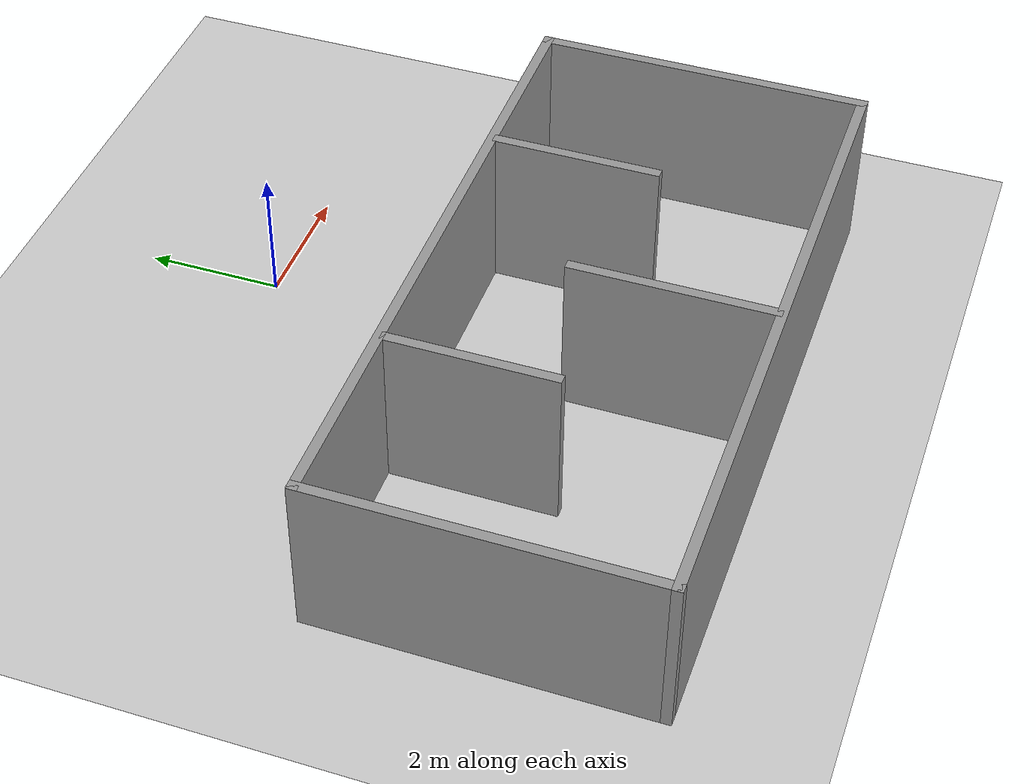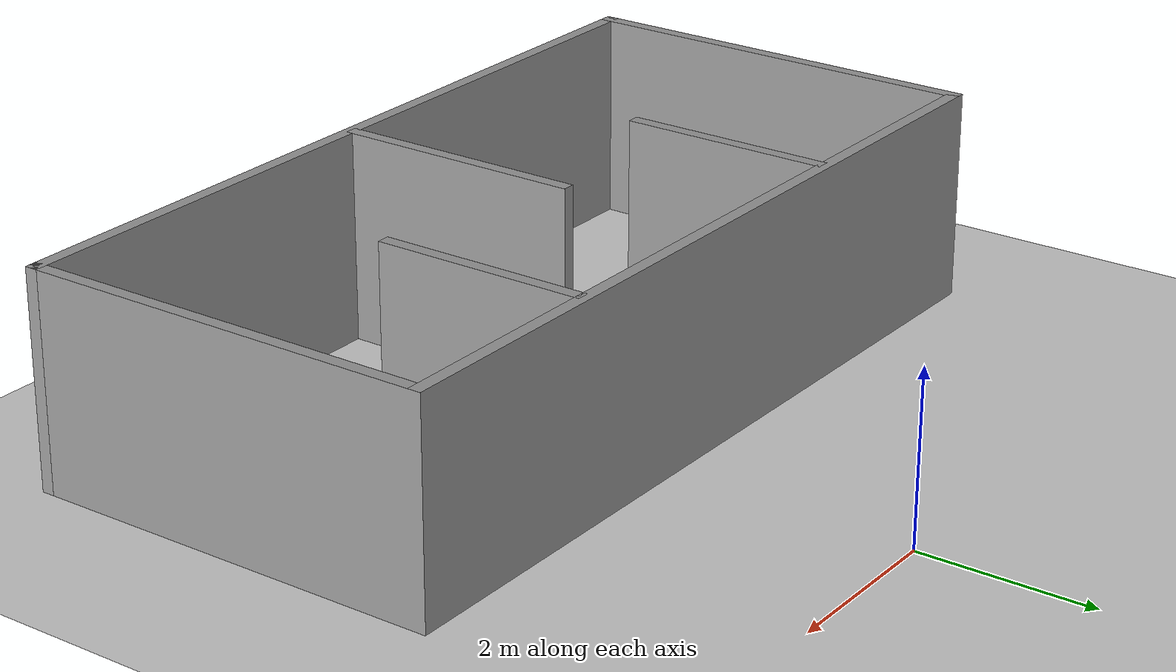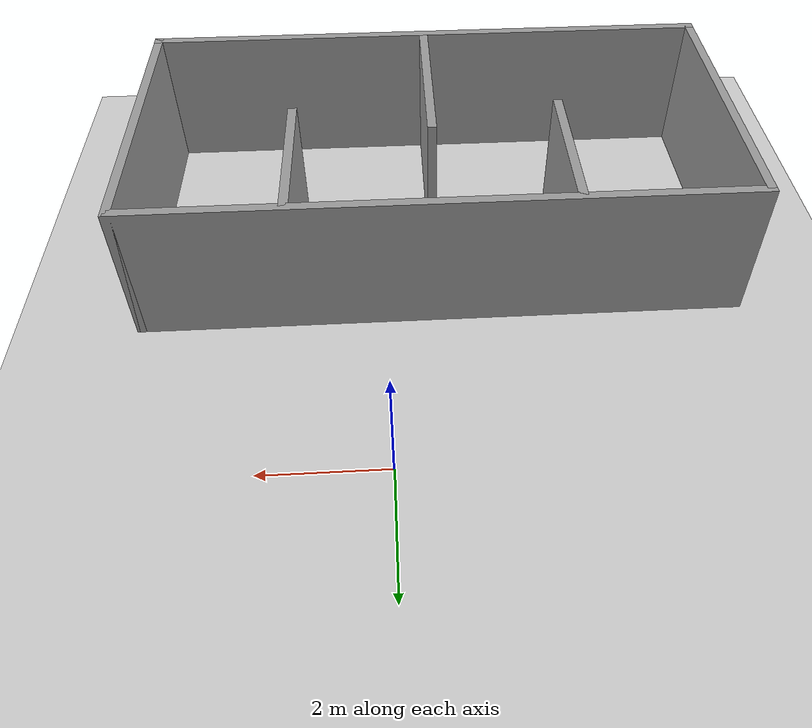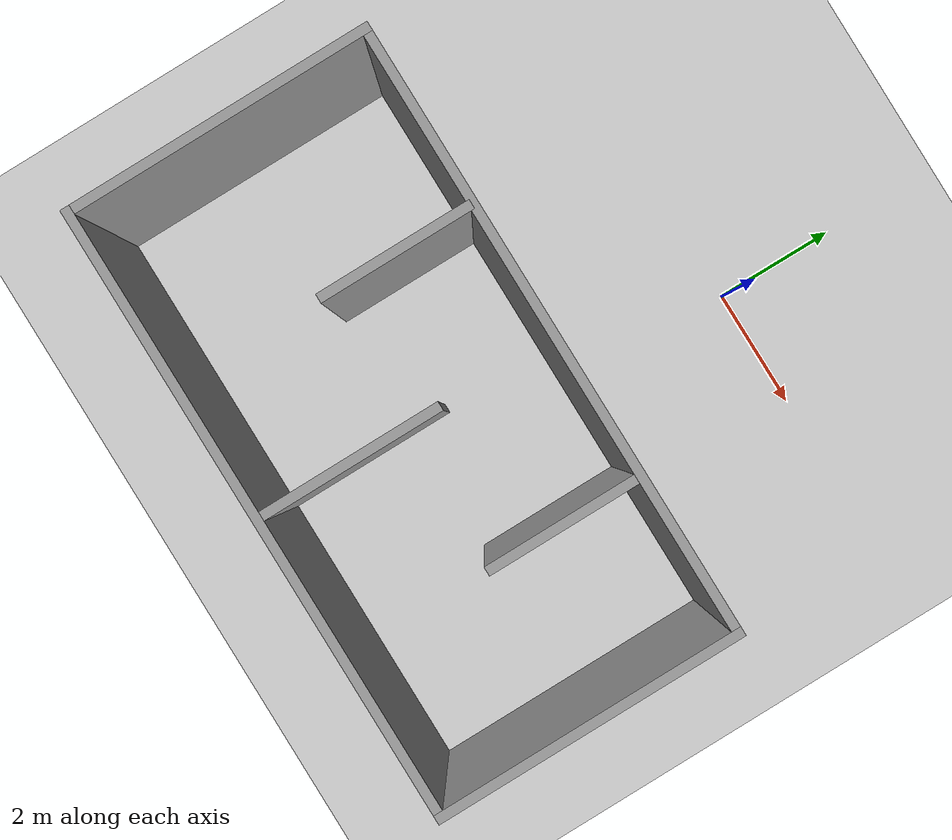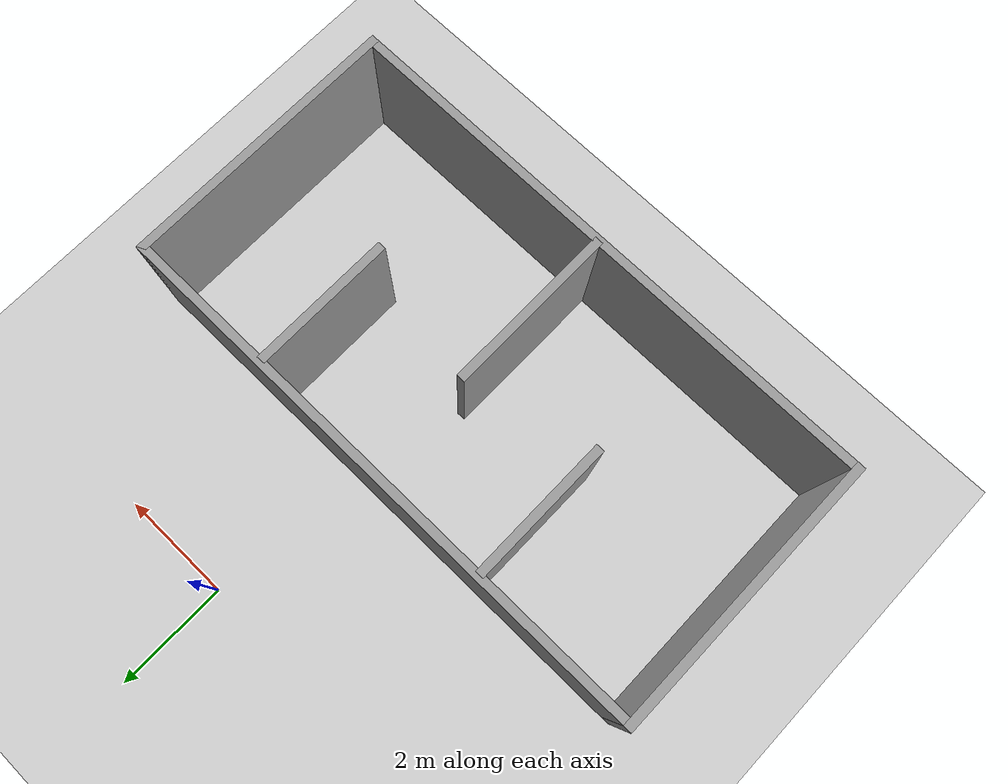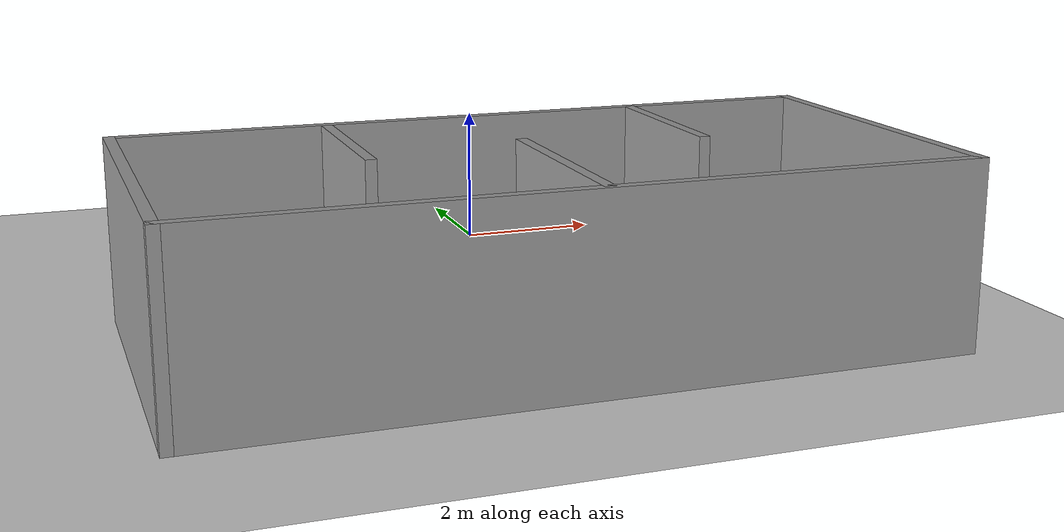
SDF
<sdf version="1.7">
 <world name="default">
  <light name="sun" type="directional">
   <pose>0 0 10 0 -0 0</pose>
   <diffuse>0.8 0.8 0.8 1</diffuse>
   <specular>0.2 0.2 0.2 1</specular>
   <attenuation>
    <range>1000</range>
    <constant>0.9</constant>
    <linear>0.01</linear>
    <quadratic>0.001</quadratic>
   </attenuation>
   <direction>-0.5 0.1 -0.9</direction>
   <spot><inner_angle>0</inner_angle><outer_angle>0</outer_angle><falloff>0</falloff></spot>
  </light>
  <model name="ground_plane">
   <static>1</static>
   <link name="link">
    <collision name="collision">
     <geometry><plane><normal>0 0 1</normal><size>100 100</size></plane></geometry>
     <surface><friction><ode><mu>100</mu><mu2>50</mu2></ode></friction></surface>
    </collision>
    <visual name="visual">
     <cast_shadows>0</cast_shadows>
     <geometry><plane><normal>0 0 1</normal><size>100 100</size></plane></geometry>
     <material>
      <script><uri>file://media/materials/scripts/gazebo.material</uri><name>Gazebo/Grey</name></script>
     </material>
    </visual>
   </link>
  </model>
  <gravity>0 0 -9.8</gravity>
  <magnetic_field>6e-06 2.3e-05 -4.2e-05</magnetic_field>
  <atmosphere type="adiabatic"/>
  <physics type="ode">
   <max_step_size>0.001</max_step_size>
   <real_time_factor>1</real_time_factor>
   <real_time_update_rate>1000</real_time_update_rate>
  </physics>
  <scene><ambient>0.4 0.4 0.4 1</ambient><background>0.7 0.7 0.7 1</background><shadows>1</shadows></scene>
  <spherical_coordinates>
   <surface_model>EARTH_WGS84</surface_model>
   <latitude_deg>0</latitude_deg>
   <longitude_deg>0</longitude_deg>
   <elevation>0</elevation>
   <heading_deg>0</heading_deg>
  </spherical_coordinates>
  <model name="CG-GZ-Scene-001">
   <pose>-0.869822 -5.35071 0 0 -0 0</pose>
   <link name="Wall_20">
    <collision name="Wall_20_Collision">
     <geometry><box><size>5 0.15 2.5</size></box></geometry>
     <pose>0 0 1.25 0 -0 0</pose>
    </collision>
    <visual name="Wall_20_Visual">
     <pose>0 0 1.25 0 -0 0</pose>
     <geometry><box><size>5 0.15 2.5</size></box></geometry>
     <material>
      <script><uri>file://media/materials/scripts/gazebo.material</uri><name>Gazebo/Grey</name></script>
      <ambient>1 1 1 1</ambient>
     </material>
     <meta><layer>0</layer></meta>
    </visual>
    <pose>4.925 0 0 0 -0 -1.5708</pose>
   </link>
   <link name="Wall_21">
    <collision name="Wall_21_Collision">
     <geometry><box><size>10 0.15 2.5</size></box></geometry>
     <pose>0 0 1.25 0 -0 0</pose>
    </collision>
    <visual name="Wall_21_Visual">
     <pose>0 0 1.25 0 -0 0</pose>
     <geometry><box><size>10 0.15 2.5</size></box></geometry>
     <material>
      <script><uri>file://media/materials/scripts/gazebo.material</uri><name>Gazebo/Grey</name></script>
      <ambient>1 1 1 1</ambient>
     </material>
     <meta><layer>0</layer></meta>
    </visual>
    <pose>-0 -2.425 0 0 -0 3.14159</pose>
   </link>
   <link name="Wall_22">
    <collision name="Wall_22_Collision">
     <geometry><box><size>5 0.15 2.5</size></box></geometry>
     <pose>0 0 1.25 0 -0 0</pose>
    </collision>
    <visual name="Wall_22_Visual">
     <pose>0 0 1.25 0 -0 0</pose>
     <geometry><box><size>5 0.15 2.5</size></box></geometry>
     <material>
      <script><uri>file://media/materials/scripts/gazebo.material</uri><name>Gazebo/Grey</name></script>
      <ambient>1 1 1 1</ambient>
     </material>
     <meta><layer>0</layer></meta>
    </visual>
    <pose>-4.925 0 0 0 -0 1.5708</pose>
   </link>
   <link name="Wall_29">
    <collision name="Wall_29_Collision">
     <geometry><box><size>2.5 0.15 2.5</size></box></geometry>
     <pose>0 0 1.25 0 -0 0</pose>
    </collision>
    <visual name="Wall_29_Visual">
     <pose>0 0 1.25 0 -0 0</pose>
     <geometry><box><size>2.5 0.15 2.5</size></box></geometry>
     <material>
      <script><uri>file://media/materials/scripts/gazebo.material</uri><name>Gazebo/Grey</name></script>
      <ambient>1 1 1 1</ambient>
     </material>
     <meta><layer>0</layer></meta>
    </visual>
    <pose>-2.08185 1.15537 0 0 -0 -1.5708</pose>
   </link>
   <link name="Wall_3">
    <collision name="Wall_3_Collision">
     <geometry><box><size>10 0.15 2.5</size></box></geometry>
     <pose>0 0 1.25 0 -0 0</pose>
    </collision>
    <visual name="Wall_3_Visual">
     <pose>0 0 1.25 0 -0 0</pose>
     <geometry><box><size>10 0.15 2.5</size></box></geometry>
     <material>
      <script><uri>file://media/materials/scripts/gazebo.material</uri><name>Gazebo/Grey</name></script>
      <ambient>1 1 1 1</ambient>
     </material>
     <meta><layer>0</layer></meta>
    </visual>
    <pose>-0 2.425 0 0 -0 0</pose>
   </link>
   <link name="Wall_31">
    <collision name="Wall_31_Collision">
     <geometry><box><size>2.5 0.15 2.5</size></box></geometry>
     <pose>0 0 1.25 0 -0 0</pose>
    </collision>
    <visual name="Wall_31_Visual">
     <pose>0 0 1.25 0 -0 0</pose>
     <geometry><box><size>2.5 0.15 2.5</size></box></geometry>
     <material>
      <script><uri>file://media/materials/scripts/gazebo.material</uri><name>Gazebo/Grey</name></script>
      <ambient>1 1 1 1</ambient>
     </material>
     <meta><layer>0</layer></meta>
    </visual>
    <pose>2.35923 1.15537 0 0 -0 -1.5708</pose>
   </link>
   <link name="Wall_33">
    <collision name="Wall_33_Collision">
     <geometry><box><size>3 0.15 2.5</size></box></geometry>
     <pose>0 0 1.25 0 -0 0</pose>
    </collision>
    <visual name="Wall_33_Visual">
     <pose>0 0 1.25 0 -0 0</pose>
     <geometry><box><size>3 0.15 2.5</size></box></geometry>
     <material>
      <script><uri>file://media/materials/scripts/gazebo.material</uri><name>Gazebo/Grey</name></script>
      <ambient>1 1 1 1</ambient>
     </material>
     <meta><layer>0</layer></meta>
    </visual>
    <pose>0.0693 -0.930821 0 0 -0 -1.5708</pose>
   </link>
   <static>1</static>
  </model>
 </world>
</sdf>
